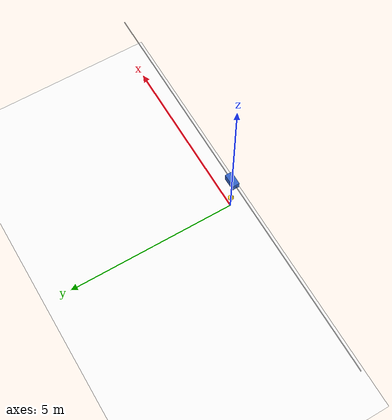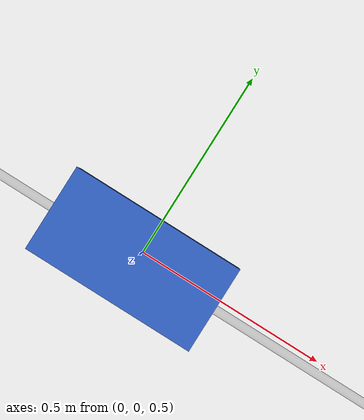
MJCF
<mujoco model="convey_crane">

  <option gravity="0 0 -9.8" integrator="RK4" timestep="0.001"/>

  <visual>
    <headlight ambient="0.4 0.4 0.4" diffuse="0.8 0.8 0.8"/>
  </visual>

  <asset>
    <texture name="grid" type="2d" builtin="checker" rgb1="0.9 0.9 0.9" rgb2="0.95 0.95 0.95" width="300" height="300"/>
    <material name="grid_mat" texture="grid" texrepeat="10 10" reflectance="0.0"/>
  </asset>

  <worldbody>
    <!-- Pavimento a griglia leggera, in secondo piano rispetto al pendolo:
         abbassato a z=-1 (ben sotto il punto più basso raggiungibile dal
         bob, z=0.5) e reso semi-trasparente (alpha=0.35) -->
    <geom name="floor" type="plane" size="10 10 0.1" pos="0 0 -1"
          material="grid_mat" rgba="1 1 1 0.35"
          contype="0" conaffinity="0"/>

    <!-- Binario visivo, sollevato a CART_HEIGHT = 1.5 (solo grafica, non fisico) -->
    <geom name="rail" type="cylinder" fromto="-6 0 1.5  6 0 1.5"
          size="0.01" rgba="0.5 0.5 0.5 0.3"
          contype="0" conaffinity="0"/>

    <!-- CARRELLO: si muove lungo x, sollevato a z=1.5 sopra il pavimento -->
    <!-- NOTA: lo slide joint trasla solo lungo l'asse locale x del body;
         spostare pos in z e' un puro offset di rendering, non altera
         in alcun modo la dinamica (x, theta) del sistema. -->
    <body name="cart" pos="0 0 1.5">
      <joint name="slider" type="slide" axis="1 0 0"
             limited="false" damping="0.0"/>
      <geom name="cart_body" type="box" size="0.2 0.1 0.1"
            rgba="0.2 0.4 0.8 1" mass="1.0"/>

      <!-- PENDOLO: appeso al carrello, ruota attorno a y -->
      <body name="pendulum" pos="0 0 0">
        <joint name="pin" type="hinge" axis="0 1 0"
               pos="0 0 0" limited="false" damping="0.0"/>
        <!-- Asta quasi senza massa: solo struttura visiva -->
        <geom name="rod" type="capsule" fromto="0 0 0  0 0 -1.0" size="0.01" rgba="0.8 0.3 0.2 1" mass="0.001"/>
        <geom name="bob" type="sphere" pos="0 0 -1.0" size="0.08" rgba="1 0.8 0 1" mass="1.0"/>
      </body>
    </body>
  </worldbody>

  <actuator>
    <!-- Solo il carrello è attuato: forza orizzontale -->
    <motor name="force" joint="slider"
           gear="1" ctrllimited="true" ctrlrange="-50 50"/>
  </actuator>

  <sensor>
    <jointpos name="x"   joint="slider"/>
    <jointpos name="th"  joint="pin"/>
    <jointvel name="dx"  joint="slider"/>
    <jointvel name="dth" joint="pin"/>
  </sensor>

</mujoco>
